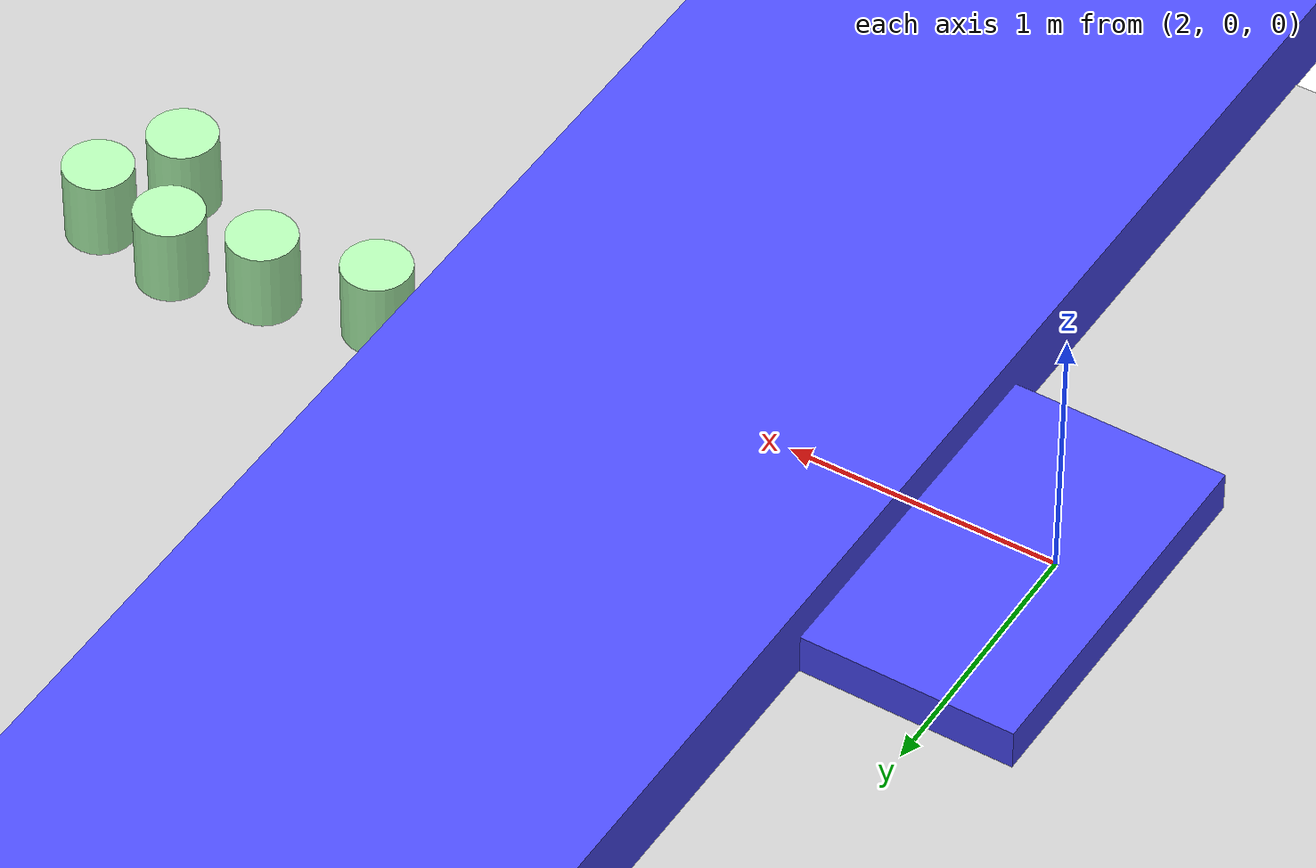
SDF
<sdf version="1.7">
 <world name="default">
  <model name="ground_plane">
   <static>1</static>
   <link name="link">
    <collision name="collision">
     <geometry><plane><normal>0 0 1</normal><size>100 100</size></plane></geometry>
     <surface><friction><ode><mu>100</mu><mu2>50</mu2></ode></friction></surface>
    </collision>
    <visual name="visual">
     <cast_shadows>0</cast_shadows>
     <geometry><plane><normal>0 0 1</normal><size>100 100</size></plane></geometry>
     <material>
      <script><uri>file://media/materials/scripts/gazebo.material</uri><name>Gazebo/Grey</name></script>
     </material>
    </visual>
   </link>
  </model>
  <model name="ban_400_80_30">
   <link name="link">
    <inertial>
     <mass>1</mass>
     <inertia>
      <ixx>0.166667</ixx>
      <ixy>0</ixy>
      <ixz>0</ixz>
      <iyy>0.166667</iyy>
      <iyz>0</iyz>
      <izz>0.166667</izz>
     </inertia>
    </inertial>
    <visual name="visual">
     <geometry><box><size>1.36221 0.8 0.3</size></box></geometry>
     <material>
      <script><name>Gazebo/Grey</name><uri>file://media/materials/scripts/gazebo.material</uri></script>
      <shader type="pixel"><normal_map>__default__</normal_map></shader>
      <ambient>0.3 0.3 1 1</ambient>
      <diffuse>0.7 0.7 0.7 1</diffuse>
      <specular>0.01 0.01 0.01 1</specular>
      <emissive>0 0 0 1</emissive>
     </material>
    </visual>
    <collision name="collision">
     <geometry><box><size>1.36221 0.8 0.3</size></box></geometry>
     <surface>
      <friction>
       <ode><mu>1</mu><mu2>1</mu2><fdir1>0 0 0</fdir1><slip1>0</slip1><slip2>0</slip2></ode>
       <torsional>
        <coefficient>1</coefficient>
        <patch_radius>0</patch_radius>
        <surface_radius>0</surface_radius>
        <use_patch_radius>1</use_patch_radius>
        <ode><slip>0</slip></ode>
       </torsional>
      </friction>
      <bounce><restitution_coefficient>0</restitution_coefficient><threshold>1e+06</threshold></bounce>
      <contact>
       <collide_without_contact>0</collide_without_contact>
       <collide_without_contact_bitmask>1</collide_without_contact_bitmask>
       <collide_bitmask>1</collide_bitmask>
       <ode>
        <soft_cfm>0</soft_cfm>
        <soft_erp>0.2</soft_erp>
        <kp>1e+13</kp>
        <kd>1</kd>
        <max_vel>0.01</max_vel>
        <min_depth>0</min_depth>
       </ode>
       <bullet>
        <split_impulse>1</split_impulse>
        <split_impulse_penetration_threshold>-0.01</split_impulse_penetration_threshold>
        <soft_cfm>0</soft_cfm>
        <soft_erp>0.2</soft_erp>
        <kp>1e+13</kp>
        <kd>1</kd>
       </bullet>
      </contact>
     </surface>
    </collision>
   </link>
   <static>1</static>
   <pose>2.06865 0.167126 0 0 -0 1.55763</pose>
  </model>
  <model name="ban_400_80_30_clone_clone">
   <link name="link">
    <inertial>
     <mass>1</mass>
     <inertia>
      <ixx>0.166667</ixx>
      <ixy>0</ixy>
      <ixz>0</ixz>
      <iyy>0.166667</iyy>
      <iyz>0</iyz>
      <izz>0.166667</izz>
     </inertia>
    </inertial>
    <visual name="visual">
     <geometry><box><size>11.703 1.83242 0.3</size></box></geometry>
     <material>
      <script><name>Gazebo/Grey</name><uri>file://media/materials/scripts/gazebo.material</uri></script>
      <shader type="pixel"><normal_map>__default__</normal_map></shader>
      <ambient>0.3 0.3 1 1</ambient>
      <diffuse>0.7 0.7 0.7 1</diffuse>
      <specular>0.01 0.01 0.01 1</specular>
      <emissive>0 0 0 1</emissive>
     </material>
    </visual>
    <collision name="collision">
     <geometry><box><size>11.703 1.83242 0.3</size></box></geometry>
     <surface>
      <friction>
       <ode><mu>1</mu><mu2>1</mu2><fdir1>0 0 0</fdir1><slip1>0</slip1><slip2>0</slip2></ode>
       <torsional>
        <coefficient>1</coefficient>
        <patch_radius>0</patch_radius>
        <surface_radius>0</surface_radius>
        <use_patch_radius>1</use_patch_radius>
        <ode><slip>0</slip></ode>
       </torsional>
      </friction>
      <bounce><restitution_coefficient>0</restitution_coefficient><threshold>1e+06</threshold></bounce>
      <contact>
       <collide_without_contact>0</collide_without_contact>
       <collide_without_contact_bitmask>1</collide_without_contact_bitmask>
       <collide_bitmask>1</collide_bitmask>
       <ode>
        <soft_cfm>0</soft_cfm>
        <soft_erp>0.2</soft_erp>
        <kp>1e+13</kp>
        <kd>1</kd>
        <max_vel>0.01</max_vel>
        <min_depth>0</min_depth>
       </ode>
       <bullet>
        <split_impulse>1</split_impulse>
        <split_impulse_penetration_threshold>-0.01</split_impulse_penetration_threshold>
        <soft_cfm>0</soft_cfm>
        <soft_erp>0.2</soft_erp>
        <kp>1e+13</kp>
        <kd>1</kd>
       </bullet>
      </contact>
     </surface>
    </collision>
   </link>
   <static>1</static>
   <pose>3.376 0.164957 0.141155 0 -0 1.55763</pose>
  </model>
  <model name="mhz_y_25_30_clone_13_clone">
   <link name="link">
    <inertial>
     <mass>1</mass>
     <inertia><ixx>0.145833</ixx><ixy>0</ixy><ixz>0</ixz><iyy>0.145833</iyy><iyz>0</iyz><izz>0.125</izz></inertia>
    </inertial>
    <visual name="visual">
     <geometry><cylinder><radius>0.125</radius><length>0.3</length></cylinder></geometry>
     <material>
      <script><name>Gazebo/Grey</name><uri>file://media/materials/scripts/gazebo.material</uri></script>
      <shader type="pixel"><normal_map>__default__</normal_map></shader>
      <ambient>0 1 0 0</ambient>
      <diffuse>0.7 1 0.7 1</diffuse>
      <specular>0.01 0.01 0.01 1</specular>
      <emissive>0 0 0 1</emissive>
     </material>
    </visual>
    <collision name="collision">
     <geometry><cylinder><radius>0.125</radius><length>0.3</length></cylinder></geometry>
     <surface>
      <friction>
       <ode><mu>1</mu><mu2>1</mu2><fdir1>0 0 0</fdir1><slip1>0</slip1><slip2>0</slip2></ode>
       <torsional>
        <coefficient>1</coefficient>
        <patch_radius>0</patch_radius>
        <surface_radius>0</surface_radius>
        <use_patch_radius>1</use_patch_radius>
        <ode><slip>0</slip></ode>
       </torsional>
      </friction>
      <bounce><restitution_coefficient>0</restitution_coefficient><threshold>1e+06</threshold></bounce>
      <contact>
       <collide_without_contact>0</collide_without_contact>
       <collide_without_contact_bitmask>1</collide_without_contact_bitmask>
       <collide_bitmask>1</collide_bitmask>
       <ode>
        <soft_cfm>0</soft_cfm>
        <soft_erp>0.2</soft_erp>
        <kp>1e+13</kp>
        <kd>1</kd>
        <max_vel>0.01</max_vel>
        <min_depth>0</min_depth>
       </ode>
       <bullet>
        <split_impulse>1</split_impulse>
        <split_impulse_penetration_threshold>-0.01</split_impulse_penetration_threshold>
        <soft_cfm>0</soft_cfm>
        <soft_erp>0.2</soft_erp>
        <kp>1e+13</kp>
        <kd>1</kd>
       </bullet>
      </contact>
     </surface>
    </collision>
   </link>
   <static>1</static>
   <pose>4.46457 0.231285 0.14679 0 -0 0</pose>
  </model>
  <model name="mhz_y_25_30_clone_13_clone_4">
   <link name="link">
    <inertial>
     <mass>1</mass>
     <inertia><ixx>0.145833</ixx><ixy>0</ixy><ixz>0</ixz><iyy>0.145833</iyy><iyz>0</iyz><izz>0.125</izz></inertia>
    </inertial>
    <visual name="visual">
     <geometry><cylinder><radius>0.125</radius><length>0.3</length></cylinder></geometry>
     <material>
      <script><name>Gazebo/Grey</name><uri>file://media/materials/scripts/gazebo.material</uri></script>
      <shader type="pixel"><normal_map>__default__</normal_map></shader>
      <ambient>0 1 0 0</ambient>
      <diffuse>0.7 1 0.7 1</diffuse>
      <specular>0.01 0.01 0.01 1</specular>
      <emissive>0 0 0 1</emissive>
     </material>
    </visual>
    <collision name="collision">
     <geometry><cylinder><radius>0.125</radius><length>0.3</length></cylinder></geometry>
     <surface>
      <friction>
       <ode><mu>1</mu><mu2>1</mu2><fdir1>0 0 0</fdir1><slip1>0</slip1><slip2>0</slip2></ode>
       <torsional>
        <coefficient>1</coefficient>
        <patch_radius>0</patch_radius>
        <surface_radius>0</surface_radius>
        <use_patch_radius>1</use_patch_radius>
        <ode><slip>0</slip></ode>
       </torsional>
      </friction>
      <bounce><restitution_coefficient>0</restitution_coefficient><threshold>1e+06</threshold></bounce>
      <contact>
       <collide_without_contact>0</collide_without_contact>
       <collide_without_contact_bitmask>1</collide_without_contact_bitmask>
       <collide_bitmask>1</collide_bitmask>
       <ode>
        <soft_cfm>0</soft_cfm>
        <soft_erp>0.2</soft_erp>
        <kp>1e+13</kp>
        <kd>1</kd>
        <max_vel>0.01</max_vel>
        <min_depth>0</min_depth>
       </ode>
       <bullet>
        <split_impulse>1</split_impulse>
        <split_impulse_penetration_threshold>-0.01</split_impulse_penetration_threshold>
        <soft_cfm>0</soft_cfm>
        <soft_erp>0.2</soft_erp>
        <kp>1e+13</kp>
        <kd>1</kd>
       </bullet>
      </contact>
     </surface>
    </collision>
   </link>
   <static>1</static>
   <pose>4.8668 0.310535 0.14679 0 -0 0</pose>
  </model>
  <model name="mhz_y_25_30_clone_13_clone_8">
   <link name="link">
    <inertial>
     <mass>1</mass>
     <inertia><ixx>0.145833</ixx><ixy>0</ixy><ixz>0</ixz><iyy>0.145833</iyy><iyz>0</iyz><izz>0.125</izz></inertia>
    </inertial>
    <visual name="visual">
     <geometry><cylinder><radius>0.125</radius><length>0.3</length></cylinder></geometry>
     <material>
      <script><name>Gazebo/Grey</name><uri>file://media/materials/scripts/gazebo.material</uri></script>
      <shader type="pixel"><normal_map>__default__</normal_map></shader>
      <ambient>0 1 0 0</ambient>
      <diffuse>0.7 1 0.7 1</diffuse>
      <specular>0.01 0.01 0.01 1</specular>
      <emissive>0 0 0 1</emissive>
     </material>
    </visual>
    <collision name="collision">
     <geometry><cylinder><radius>0.125</radius><length>0.3</length></cylinder></geometry>
     <surface>
      <friction>
       <ode><mu>1</mu><mu2>1</mu2><fdir1>0 0 0</fdir1><slip1>0</slip1><slip2>0</slip2></ode>
       <torsional>
        <coefficient>1</coefficient>
        <patch_radius>0</patch_radius>
        <surface_radius>0</surface_radius>
        <use_patch_radius>1</use_patch_radius>
        <ode><slip>0</slip></ode>
       </torsional>
      </friction>
      <bounce><restitution_coefficient>0</restitution_coefficient><threshold>1e+06</threshold></bounce>
      <contact>
       <collide_without_contact>0</collide_without_contact>
       <collide_without_contact_bitmask>1</collide_without_contact_bitmask>
       <collide_bitmask>1</collide_bitmask>
       <ode>
        <soft_cfm>0</soft_cfm>
        <soft_erp>0.2</soft_erp>
        <kp>1e+13</kp>
        <kd>1</kd>
        <max_vel>0.01</max_vel>
        <min_depth>0</min_depth>
       </ode>
       <bullet>
        <split_impulse>1</split_impulse>
        <split_impulse_penetration_threshold>-0.01</split_impulse_penetration_threshold>
        <soft_cfm>0</soft_cfm>
        <soft_erp>0.2</soft_erp>
        <kp>1e+13</kp>
        <kd>1</kd>
       </bullet>
      </contact>
     </surface>
    </collision>
   </link>
   <static>1</static>
   <pose>5.36674 0.035436 0.14679 0 -0 0</pose>
  </model>
  <model name="mhz_y_25_30_clone_13_clone_9">
   <link name="link">
    <inertial>
     <mass>1</mass>
     <inertia><ixx>0.145833</ixx><ixy>0</ixy><ixz>0</ixz><iyy>0.145833</iyy><iyz>0</iyz><izz>0.125</izz></inertia>
    </inertial>
    <visual name="visual">
     <geometry><cylinder><radius>0.125</radius><length>0.3</length></cylinder></geometry>
     <material>
      <script><name>Gazebo/Grey</name><uri>file://media/materials/scripts/gazebo.material</uri></script>
      <shader type="pixel"><normal_map>__default__</normal_map></shader>
      <ambient>0 1 0 0</ambient>
      <diffuse>0.7 1 0.7 1</diffuse>
      <specular>0.01 0.01 0.01 1</specular>
      <emissive>0 0 0 1</emissive>
     </material>
    </visual>
    <collision name="collision">
     <geometry><cylinder><radius>0.125</radius><length>0.3</length></cylinder></geometry>
     <surface>
      <friction>
       <ode><mu>1</mu><mu2>1</mu2><fdir1>0 0 0</fdir1><slip1>0</slip1><slip2>0</slip2></ode>
       <torsional>
        <coefficient>1</coefficient>
        <patch_radius>0</patch_radius>
        <surface_radius>0</surface_radius>
        <use_patch_radius>1</use_patch_radius>
        <ode><slip>0</slip></ode>
       </torsional>
      </friction>
      <bounce><restitution_coefficient>0</restitution_coefficient><threshold>1e+06</threshold></bounce>
      <contact>
       <collide_without_contact>0</collide_without_contact>
       <collide_without_contact_bitmask>1</collide_without_contact_bitmask>
       <collide_bitmask>1</collide_bitmask>
       <ode>
        <soft_cfm>0</soft_cfm>
        <soft_erp>0.2</soft_erp>
        <kp>1e+13</kp>
        <kd>1</kd>
        <max_vel>0.01</max_vel>
        <min_depth>0</min_depth>
       </ode>
       <bullet>
        <split_impulse>1</split_impulse>
        <split_impulse_penetration_threshold>-0.01</split_impulse_penetration_threshold>
        <soft_cfm>0</soft_cfm>
        <soft_erp>0.2</soft_erp>
        <kp>1e+13</kp>
        <kd>1</kd>
       </bullet>
      </contact>
     </surface>
    </collision>
   </link>
   <static>1</static>
   <pose>5.19627 0.373931 0.14679 0 -0 0</pose>
  </model>
  <model name="mhz_y_25_30_clone_13_clone_11">
   <link name="link">
    <inertial>
     <mass>1</mass>
     <inertia><ixx>0.145833</ixx><ixy>0</ixy><ixz>0</ixz><iyy>0.145833</iyy><iyz>0</iyz><izz>0.125</izz></inertia>
    </inertial>
    <visual name="visual">
     <geometry><cylinder><radius>0.125</radius><length>0.3</length></cylinder></geometry>
     <material>
      <script><name>Gazebo/Grey</name><uri>file://media/materials/scripts/gazebo.material</uri></script>
      <shader type="pixel"><normal_map>__default__</normal_map></shader>
      <ambient>0 1 0 0</ambient>
      <diffuse>0.7 1 0.7 1</diffuse>
      <specular>0.01 0.01 0.01 1</specular>
      <emissive>0 0 0 1</emissive>
     </material>
    </visual>
    <collision name="collision">
     <geometry><cylinder><radius>0.125</radius><length>0.3</length></cylinder></geometry>
     <surface>
      <friction>
       <ode><mu>1</mu><mu2>1</mu2><fdir1>0 0 0</fdir1><slip1>0</slip1><slip2>0</slip2></ode>
       <torsional>
        <coefficient>1</coefficient>
        <patch_radius>0</patch_radius>
        <surface_radius>0</surface_radius>
        <use_patch_radius>1</use_patch_radius>
        <ode><slip>0</slip></ode>
       </torsional>
      </friction>
      <bounce><restitution_coefficient>0</restitution_coefficient><threshold>1e+06</threshold></bounce>
      <contact>
       <collide_without_contact>0</collide_without_contact>
       <collide_without_contact_bitmask>1</collide_without_contact_bitmask>
       <collide_bitmask>1</collide_bitmask>
       <ode>
        <soft_cfm>0</soft_cfm>
        <soft_erp>0.2</soft_erp>
        <kp>1e+13</kp>
        <kd>1</kd>
        <max_vel>0.01</max_vel>
        <min_depth>0</min_depth>
       </ode>
       <bullet>
        <split_impulse>1</split_impulse>
        <split_impulse_penetration_threshold>-0.01</split_impulse_penetration_threshold>
        <soft_cfm>0</soft_cfm>
        <soft_erp>0.2</soft_erp>
        <kp>1e+13</kp>
        <kd>1</kd>
       </bullet>
      </contact>
     </surface>
    </collision>
   </link>
   <static>1</static>
   <pose>5.52407 0.310951 0.14679 0 -0 0</pose>
  </model>
 </world>
</sdf>
